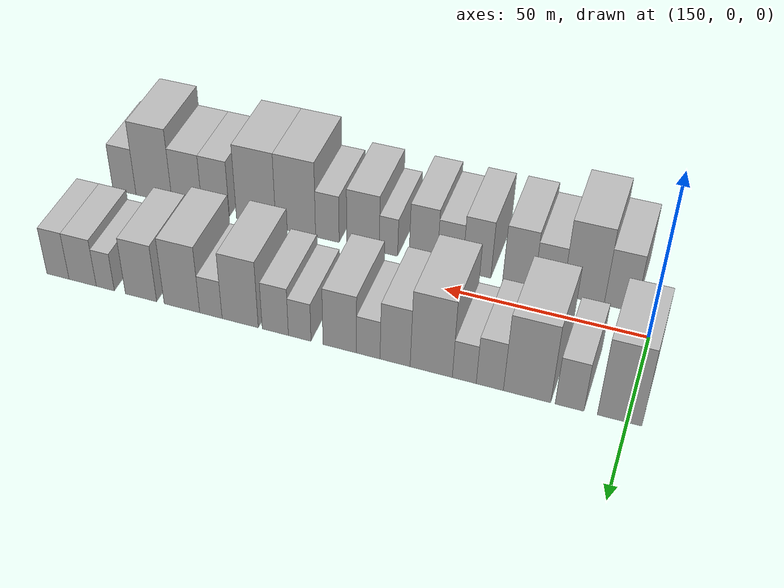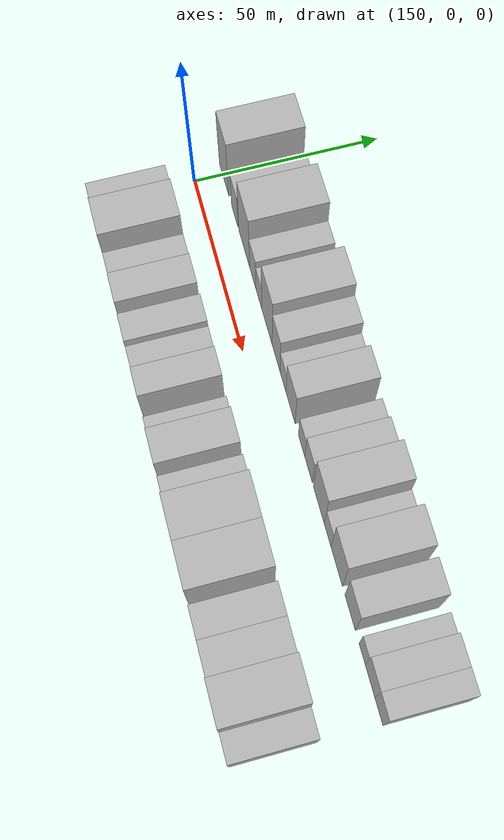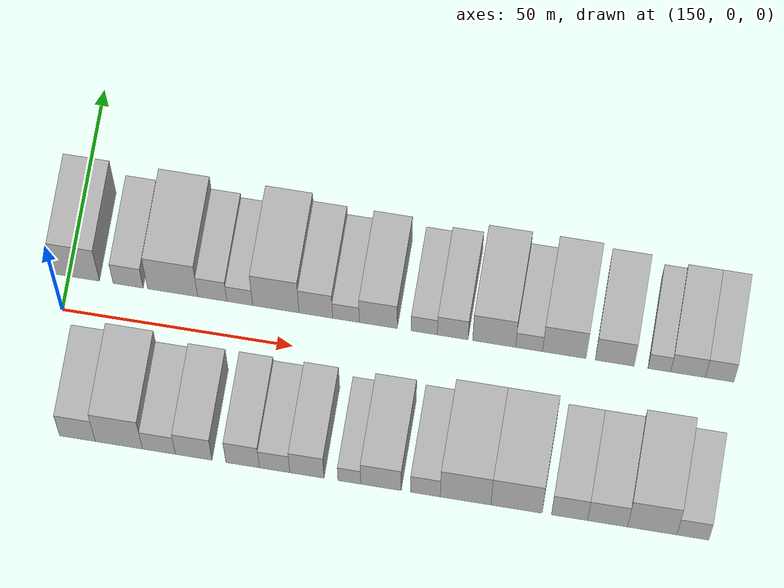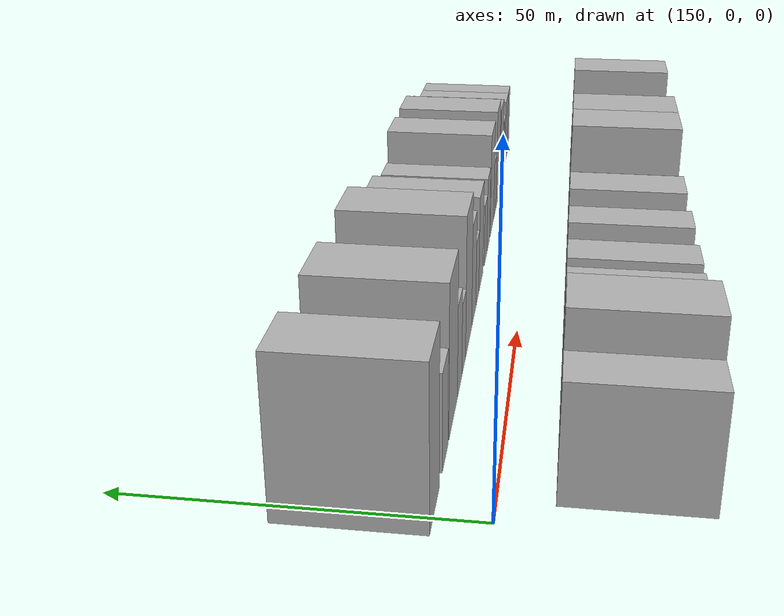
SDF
<sdf version="1.6">
 <world name="default">
  <model name="building_16">
   <static>1</static>
   <pose>151.6716 17.5000 0 0.000000 0.000000 1.570796</pose>
   <link name="link">
    <pose>0 0 12.00 0 0 0</pose>
    <collision name="collision"><geometry><box><size>20.0000 9.9136 24.0000</size></box></geometry></collision>
    <visual name="visual">
     <cast_shadows>0</cast_shadows>
     <geometry><box><size>20.0000 9.9136 24.0000</size></box></geometry>
     <material>
      <script>
       <uri>model://HANNAS_wall/materials/scripts</uri>
       <uri>model://HANNAS_wall/materials/textures</uri>
       <name>vrc/HANNAS_wall</name>
      </script>
     </material>
    </visual>
   </link>
  </model>
  <model name="building_17">
   <static>1</static>
   <pose>162.9030 17.5000 0 0.000000 0.000000 1.570796</pose>
   <link name="link">
    <pose>0 0 7.50 0 0 0</pose>
    <collision name="collision"><geometry><box><size>20.0000 6.5493 15.0000</size></box></geometry></collision>
    <visual name="visual">
     <cast_shadows>0</cast_shadows>
     <geometry><box><size>20.0000 6.5493 15.0000</size></box></geometry>
     <material>
      <script>
       <uri>model://HANNAS_wall/materials/scripts</uri>
       <uri>model://HANNAS_wall/materials/textures</uri>
       <name>vrc/HANNAS_wall</name>
      </script>
     </material>
    </visual>
   </link>
  </model>
  <model name="building_18">
   <static>1</static>
   <pose>172.6414 17.5000 0 0.000000 0.000000 1.570796</pose>
   <link name="link">
    <pose>0 0 12.00 0 0 0</pose>
    <collision name="collision"><geometry><box><size>20.0000 10.9275 24.0000</size></box></geometry></collision>
    <visual name="visual">
     <cast_shadows>0</cast_shadows>
     <geometry><box><size>20.0000 10.9275 24.0000</size></box></geometry>
     <material>
      <script>
       <uri>model://HANNAS_wall/materials/scripts</uri>
       <uri>model://HANNAS_wall/materials/textures</uri>
       <name>vrc/HANNAS_wall</name>
      </script>
     </material>
    </visual>
   </link>
  </model>
  <model name="building_19">
   <static>1</static>
   <pose>181.2787 17.5000 0 0.000000 0.000000 1.570796</pose>
   <link name="link">
    <pose>0 0 7.50 0 0 0</pose>
    <collision name="collision"><geometry><box><size>20.0000 6.3471 15.0000</size></box></geometry></collision>
    <visual name="visual">
     <cast_shadows>0</cast_shadows>
     <geometry><box><size>20.0000 6.3471 15.0000</size></box></geometry>
     <material>
      <script>
       <uri>model://HANNAS_wall/materials/scripts</uri>
       <uri>model://HANNAS_wall/materials/textures</uri>
       <name>vrc/HANNAS_wall</name>
      </script>
     </material>
    </visual>
   </link>
  </model>
  <model name="building_20">
   <static>1</static>
   <pose>187.2736 17.5000 0 0.000000 0.000000 1.570796</pose>
   <link name="link">
    <pose>0 0 6.00 0 0 0</pose>
    <collision name="collision"><geometry><box><size>20.0000 5.6426 12.0000</size></box></geometry></collision>
    <visual name="visual">
     <cast_shadows>0</cast_shadows>
     <geometry><box><size>20.0000 5.6426 12.0000</size></box></geometry>
     <material>
      <script>
       <uri>model://HANNAS_wall/materials/scripts</uri>
       <uri>model://HANNAS_wall/materials/textures</uri>
       <name>vrc/HANNAS_wall</name>
      </script>
     </material>
    </visual>
   </link>
  </model>
  <model name="building_21">
   <static>1</static>
   <pose>195.1427 17.5000 0 0.000000 0.000000 1.570796</pose>
   <link name="link">
    <pose>0 0 12.00 0 0 0</pose>
    <collision name="collision"><geometry><box><size>20.0000 10.0957 24.0000</size></box></geometry></collision>
    <visual name="visual">
     <cast_shadows>0</cast_shadows>
     <geometry><box><size>20.0000 10.0957 24.0000</size></box></geometry>
     <material>
      <script>
       <uri>model://HANNAS_wall/materials/scripts</uri>
       <uri>model://HANNAS_wall/materials/textures</uri>
       <name>vrc/HANNAS_wall</name>
      </script>
     </material>
    </visual>
   </link>
  </model>
  <model name="building_22">
   <static>1</static>
   <pose>203.8434 17.5000 0 0.000000 0.000000 1.570796</pose>
   <link name="link">
    <pose>0 0 9.00 0 0 0</pose>
    <collision name="collision"><geometry><box><size>20.0000 7.3057 18.0000</size></box></geometry></collision>
    <visual name="visual">
     <cast_shadows>0</cast_shadows>
     <geometry><box><size>20.0000 7.3057 18.0000</size></box></geometry>
     <material>
      <script>
       <uri>model://HANNAS_wall/materials/scripts</uri>
       <uri>model://HANNAS_wall/materials/textures</uri>
       <name>vrc/HANNAS_wall</name>
      </script>
     </material>
    </visual>
   </link>
  </model>
  <model name="building_23">
   <static>1</static>
   <pose>210.3932 17.5000 0 0.000000 0.000000 1.570796</pose>
   <link name="link">
    <pose>0 0 6.00 0 0 0</pose>
    <collision name="collision"><geometry><box><size>20.0000 5.7938 12.0000</size></box></geometry></collision>
    <visual name="visual">
     <cast_shadows>0</cast_shadows>
     <geometry><box><size>20.0000 5.7938 12.0000</size></box></geometry>
     <material>
      <script>
       <uri>model://HANNAS_wall/materials/scripts</uri>
       <uri>model://HANNAS_wall/materials/textures</uri>
       <name>vrc/HANNAS_wall</name>
      </script>
     </material>
    </visual>
   </link>
  </model>
  <model name="building_24">
   <static>1</static>
   <pose>217.4280 17.5000 0 0.000000 0.000000 1.570796</pose>
   <link name="link">
    <pose>0 0 9.00 0 0 0</pose>
    <collision name="collision"><geometry><box><size>20.0000 8.2758 18.0000</size></box></geometry></collision>
    <visual name="visual">
     <cast_shadows>0</cast_shadows>
     <geometry><box><size>20.0000 8.2758 18.0000</size></box></geometry>
     <material>
      <script>
       <uri>model://HANNAS_wall/materials/scripts</uri>
       <uri>model://HANNAS_wall/materials/textures</uri>
       <name>vrc/HANNAS_wall</name>
      </script>
     </material>
    </visual>
   </link>
  </model>
  <model name="building_25">
   <static>1</static>
   <pose>227.4150 17.5000 0 0.000000 0.000000 1.570796</pose>
   <link name="link">
    <pose>0 0 6.00 0 0 0</pose>
    <collision name="collision"><geometry><box><size>20.0000 5.6981 12.0000</size></box></geometry></collision>
    <visual name="visual">
     <cast_shadows>0</cast_shadows>
     <geometry><box><size>20.0000 5.6981 12.0000</size></box></geometry>
     <material>
      <script>
       <uri>model://HANNAS_wall/materials/scripts</uri>
       <uri>model://HANNAS_wall/materials/textures</uri>
       <name>vrc/HANNAS_wall</name>
      </script>
     </material>
    </visual>
   </link>
  </model>
  <model name="building_26">
   <static>1</static>
   <pose>233.5926 17.5000 0 0.000000 0.000000 1.570796</pose>
   <link name="link">
    <pose>0 0 7.50 0 0 0</pose>
    <collision name="collision"><geometry><box><size>20.0000 6.6571 15.0000</size></box></geometry></collision>
    <visual name="visual">
     <cast_shadows>0</cast_shadows>
     <geometry><box><size>20.0000 6.6571 15.0000</size></box></geometry>
     <material>
      <script>
       <uri>model://HANNAS_wall/materials/scripts</uri>
       <uri>model://HANNAS_wall/materials/textures</uri>
       <name>vrc/HANNAS_wall</name>
      </script>
     </material>
    </visual>
   </link>
  </model>
  <model name="building_27">
   <static>1</static>
   <pose>242.5889 17.5000 0 0.000000 0.000000 1.570796</pose>
   <link name="link">
    <pose>0 0 10.50 0 0 0</pose>
    <collision name="collision"><geometry><box><size>20.0000 9.3354 21.0000</size></box></geometry></collision>
    <visual name="visual">
     <cast_shadows>0</cast_shadows>
     <geometry><box><size>20.0000 9.3354 21.0000</size></box></geometry>
     <material>
      <script>
       <uri>model://HANNAS_wall/materials/scripts</uri>
       <uri>model://HANNAS_wall/materials/textures</uri>
       <name>vrc/HANNAS_wall</name>
      </script>
     </material>
    </visual>
   </link>
  </model>
  <model name="building_28">
   <static>1</static>
   <pose>250.1770 17.5000 0 0.000000 0.000000 1.570796</pose>
   <link name="link">
    <pose>0 0 6.00 0 0 0</pose>
    <collision name="collision"><geometry><box><size>20.0000 5.8409 12.0000</size></box></geometry></collision>
    <visual name="visual">
     <cast_shadows>0</cast_shadows>
     <geometry><box><size>20.0000 5.8409 12.0000</size></box></geometry>
     <material>
      <script>
       <uri>model://HANNAS_wall/materials/scripts</uri>
       <uri>model://HANNAS_wall/materials/textures</uri>
       <name>vrc/HANNAS_wall</name>
      </script>
     </material>
    </visual>
   </link>
  </model>
  <model name="building_29">
   <static>1</static>
   <pose>257.8004 17.5000 0 0.000000 0.000000 1.570796</pose>
   <link name="link">
    <pose>0 0 10.50 0 0 0</pose>
    <collision name="collision"><geometry><box><size>20.0000 9.4058 21.0000</size></box></geometry></collision>
    <visual name="visual">
     <cast_shadows>0</cast_shadows>
     <geometry><box><size>20.0000 9.4058 21.0000</size></box></geometry>
     <material>
      <script>
       <uri>model://HANNAS_wall/materials/scripts</uri>
       <uri>model://HANNAS_wall/materials/textures</uri>
       <name>vrc/HANNAS_wall</name>
      </script>
     </material>
    </visual>
   </link>
  </model>
  <model name="building_30">
   <static>1</static>
   <pose>268.7060 17.5000 0 0.000000 0.000000 1.570796</pose>
   <link name="link">
    <pose>0 0 9.00 0 0 0</pose>
    <collision name="collision"><geometry><box><size>20.0000 8.4054 18.0000</size></box></geometry></collision>
    <visual name="visual">
     <cast_shadows>0</cast_shadows>
     <geometry><box><size>20.0000 8.4054 18.0000</size></box></geometry>
     <material>
      <script>
       <uri>model://HANNAS_wall/materials/scripts</uri>
       <uri>model://HANNAS_wall/materials/textures</uri>
       <name>vrc/HANNAS_wall</name>
      </script>
     </material>
    </visual>
   </link>
  </model>
  <model name="building_31">
   <static>1</static>
   <pose>278.3729 17.5000 0 0.000000 0.000000 1.570796</pose>
   <link name="link">
    <pose>0 0 6.00 0 0 0</pose>
    <collision name="collision"><geometry><box><size>20.0000 4.9284 12.0000</size></box></geometry></collision>
    <visual name="visual">
     <cast_shadows>0</cast_shadows>
     <geometry><box><size>20.0000 4.9284 12.0000</size></box></geometry>
     <material>
      <script>
       <uri>model://HANNAS_wall/materials/scripts</uri>
       <uri>model://HANNAS_wall/materials/textures</uri>
       <name>vrc/HANNAS_wall</name>
      </script>
     </material>
    </visual>
   </link>
  </model>
  <model name="building_32">
   <static>1</static>
   <pose>284.5853 17.5000 0 0.000000 0.000000 1.570796</pose>
   <link name="link">
    <pose>0 0 7.50 0 0 0</pose>
    <collision name="collision"><geometry><box><size>20.0000 7.4963 15.0000</size></box></geometry></collision>
    <visual name="visual">
     <cast_shadows>0</cast_shadows>
     <geometry><box><size>20.0000 7.4963 15.0000</size></box></geometry>
     <material>
      <script>
       <uri>model://HANNAS_wall/materials/scripts</uri>
       <uri>model://HANNAS_wall/materials/textures</uri>
       <name>vrc/HANNAS_wall</name>
      </script>
     </material>
    </visual>
   </link>
  </model>
  <model name="building_33">
   <static>1</static>
   <pose>291.4075 17.5000 0 0.000000 0.000000 1.570796</pose>
   <link name="link">
    <pose>0 0 7.50 0 0 0</pose>
    <collision name="collision"><geometry><box><size>20.0000 6.1482 15.0000</size></box></geometry></collision>
    <visual name="visual">
     <cast_shadows>0</cast_shadows>
     <geometry><box><size>20.0000 6.1482 15.0000</size></box></geometry>
     <material>
      <script>
       <uri>model://HANNAS_wall/materials/scripts</uri>
       <uri>model://HANNAS_wall/materials/textures</uri>
       <name>vrc/HANNAS_wall</name>
      </script>
     </material>
    </visual>
   </link>
  </model>
  <model name="building_50">
   <static>1</static>
   <pose>158.2907 -17.5000 0 0.000000 0.000000 1.570796</pose>
   <link name="link">
    <pose>0 0 9.00 0 0 0</pose>
    <collision name="collision"><geometry><box><size>20.0000 7.7266 18.0000</size></box></geometry></collision>
    <visual name="visual">
     <cast_shadows>0</cast_shadows>
     <geometry><box><size>20.0000 7.7266 18.0000</size></box></geometry>
     <material>
      <script>
       <uri>model://HANNAS_wall/materials/scripts</uri>
       <uri>model://HANNAS_wall/materials/textures</uri>
       <name>vrc/HANNAS_wall</name>
      </script>
     </material>
    </visual>
   </link>
  </model>
  <model name="building_51">
   <static>1</static>
   <pose>167.2499 -17.5000 0 0.000000 0.000000 1.570796</pose>
   <link name="link">
    <pose>0 0 12.00 0 0 0</pose>
    <collision name="collision"><geometry><box><size>20.0000 10.1919 24.0000</size></box></geometry></collision>
    <visual name="visual">
     <cast_shadows>0</cast_shadows>
     <geometry><box><size>20.0000 10.1919 24.0000</size></box></geometry>
     <material>
      <script>
       <uri>model://HANNAS_wall/materials/scripts</uri>
       <uri>model://HANNAS_wall/materials/textures</uri>
       <name>vrc/HANNAS_wall</name>
      </script>
     </material>
    </visual>
   </link>
  </model>
  <model name="building_52">
   <static>1</static>
   <pose>175.9003 -17.5000 0 0.000000 0.000000 1.570796</pose>
   <link name="link">
    <pose>0 0 7.50 0 0 0</pose>
    <collision name="collision"><geometry><box><size>20.0000 7.1090 15.0000</size></box></geometry></collision>
    <visual name="visual">
     <cast_shadows>0</cast_shadows>
     <geometry><box><size>20.0000 7.1090 15.0000</size></box></geometry>
     <material>
      <script>
       <uri>model://HANNAS_wall/materials/scripts</uri>
       <uri>model://HANNAS_wall/materials/textures</uri>
       <name>vrc/HANNAS_wall</name>
      </script>
     </material>
    </visual>
   </link>
  </model>
  <model name="building_53">
   <static>1</static>
   <pose>183.4183 -17.5000 0 0.000000 0.000000 1.570796</pose>
   <link name="link">
    <pose>0 0 9.00 0 0 0</pose>
    <collision name="collision"><geometry><box><size>20.0000 7.9270 18.0000</size></box></geometry></collision>
    <visual name="visual">
     <cast_shadows>0</cast_shadows>
     <geometry><box><size>20.0000 7.9270 18.0000</size></box></geometry>
     <material>
      <script>
       <uri>model://HANNAS_wall/materials/scripts</uri>
       <uri>model://HANNAS_wall/materials/textures</uri>
       <name>vrc/HANNAS_wall</name>
      </script>
     </material>
    </visual>
   </link>
  </model>
  <model name="building_54">
   <static>1</static>
   <pose>193.9921 -17.5000 0 0.000000 0.000000 1.570796</pose>
   <link name="link">
    <pose>0 0 9.00 0 0 0</pose>
    <collision name="collision"><geometry><box><size>20.0000 7.2206 18.0000</size></box></geometry></collision>
    <visual name="visual">
     <cast_shadows>0</cast_shadows>
     <geometry><box><size>20.0000 7.2206 18.0000</size></box></geometry>
     <material>
      <script>
       <uri>model://HANNAS_wall/materials/scripts</uri>
       <uri>model://HANNAS_wall/materials/textures</uri>
       <name>vrc/HANNAS_wall</name>
      </script>
     </material>
    </visual>
   </link>
  </model>
  <model name="building_55">
   <static>1</static>
   <pose>200.8921 -17.5000 0 0.000000 0.000000 1.570796</pose>
   <link name="link">
    <pose>0 0 7.50 0 0 0</pose>
    <collision name="collision"><geometry><box><size>20.0000 6.5794 15.0000</size></box></geometry></collision>
    <visual name="visual">
     <cast_shadows>0</cast_shadows>
     <geometry><box><size>20.0000 6.5794 15.0000</size></box></geometry>
     <material>
      <script>
       <uri>model://HANNAS_wall/materials/scripts</uri>
       <uri>model://HANNAS_wall/materials/textures</uri>
       <name>vrc/HANNAS_wall</name>
      </script>
     </material>
    </visual>
   </link>
  </model>
  <model name="building_56">
   <static>1</static>
   <pose>207.8670 -17.5000 0 0.000000 0.000000 1.570796</pose>
   <link name="link">
    <pose>0 0 9.00 0 0 0</pose>
    <collision name="collision"><geometry><box><size>20.0000 7.3704 18.0000</size></box></geometry></collision>
    <visual name="visual">
     <cast_shadows>0</cast_shadows>
     <geometry><box><size>20.0000 7.3704 18.0000</size></box></geometry>
     <material>
      <script>
       <uri>model://HANNAS_wall/materials/scripts</uri>
       <uri>model://HANNAS_wall/materials/textures</uri>
       <name>vrc/HANNAS_wall</name>
      </script>
     </material>
    </visual>
   </link>
  </model>
  <model name="building_57">
   <static>1</static>
   <pose>217.0027 -17.5000 0 0.000000 0.000000 1.570796</pose>
   <link name="link">
    <pose>0 0 6.00 0 0 0</pose>
    <collision name="collision"><geometry><box><size>20.0000 4.9009 12.0000</size></box></geometry></collision>
    <visual name="visual">
     <cast_shadows>0</cast_shadows>
     <geometry><box><size>20.0000 4.9009 12.0000</size></box></geometry>
     <material>
      <script>
       <uri>model://HANNAS_wall/materials/scripts</uri>
       <uri>model://HANNAS_wall/materials/textures</uri>
       <name>vrc/HANNAS_wall</name>
      </script>
     </material>
    </visual>
   </link>
  </model>
  <model name="building_58">
   <static>1</static>
   <pose>223.8086 -17.5000 0 0.000000 0.000000 1.570796</pose>
   <link name="link">
    <pose>0 0 9.00 0 0 0</pose>
    <collision name="collision"><geometry><box><size>20.0000 8.7110 18.0000</size></box></geometry></collision>
    <visual name="visual">
     <cast_shadows>0</cast_shadows>
     <geometry><box><size>20.0000 8.7110 18.0000</size></box></geometry>
     <material>
      <script>
       <uri>model://HANNAS_wall/materials/scripts</uri>
       <uri>model://HANNAS_wall/materials/textures</uri>
       <name>vrc/HANNAS_wall</name>
      </script>
     </material>
    </visual>
   </link>
  </model>
  <model name="building_59">
   <static>1</static>
   <pose>233.3595 -17.5000 0 0.000000 0.000000 1.570796</pose>
   <link name="link">
    <pose>0 0 7.50 0 0 0</pose>
    <collision name="collision"><geometry><box><size>20.0000 6.3907 15.0000</size></box></geometry></collision>
    <visual name="visual">
     <cast_shadows>0</cast_shadows>
     <geometry><box><size>20.0000 6.3907 15.0000</size></box></geometry>
     <material>
      <script>
       <uri>model://HANNAS_wall/materials/scripts</uri>
       <uri>model://HANNAS_wall/materials/textures</uri>
       <name>vrc/HANNAS_wall</name>
      </script>
     </material>
    </visual>
   </link>
  </model>
  <model name="building_60">
   <static>1</static>
   <pose>242.0150 -17.5000 0 0.000000 0.000000 1.570796</pose>
   <link name="link">
    <pose>0 0 12.00 0 0 0</pose>
    <collision name="collision"><geometry><box><size>20.0000 10.9201 24.0000</size></box></geometry></collision>
    <visual name="visual">
     <cast_shadows>0</cast_shadows>
     <geometry><box><size>20.0000 10.9201 24.0000</size></box></geometry>
     <material>
      <script>
       <uri>model://HANNAS_wall/materials/scripts</uri>
       <uri>model://HANNAS_wall/materials/textures</uri>
       <name>vrc/HANNAS_wall</name>
      </script>
     </material>
    </visual>
   </link>
  </model>
  <model name="building_61">
   <static>1</static>
   <pose>252.9673 -17.5000 0 0.000000 0.000000 1.570796</pose>
   <link name="link">
    <pose>0 0 12.00 0 0 0</pose>
    <collision name="collision"><geometry><box><size>20.0000 10.9845 24.0000</size></box></geometry></collision>
    <visual name="visual">
     <cast_shadows>0</cast_shadows>
     <geometry><box><size>20.0000 10.9845 24.0000</size></box></geometry>
     <material>
      <script>
       <uri>model://HANNAS_wall/materials/scripts</uri>
       <uri>model://HANNAS_wall/materials/textures</uri>
       <name>vrc/HANNAS_wall</name>
      </script>
     </material>
    </visual>
   </link>
  </model>
  <model name="building_62">
   <static>1</static>
   <pose>264.3280 -17.5000 0 0.000000 0.000000 1.570796</pose>
   <link name="link">
    <pose>0 0 9.00 0 0 0</pose>
    <collision name="collision"><geometry><box><size>20.0000 7.7370 18.0000</size></box></geometry></collision>
    <visual name="visual">
     <cast_shadows>0</cast_shadows>
     <geometry><box><size>20.0000 7.7370 18.0000</size></box></geometry>
     <material>
      <script>
       <uri>model://HANNAS_wall/materials/scripts</uri>
       <uri>model://HANNAS_wall/materials/textures</uri>
       <name>vrc/HANNAS_wall</name>
      </script>
     </material>
    </visual>
   </link>
  </model>
  <model name="building_63">
   <static>1</static>
   <pose>272.4907 -17.5000 0 0.000000 0.000000 1.570796</pose>
   <link name="link">
    <pose>0 0 9.00 0 0 0</pose>
    <collision name="collision"><geometry><box><size>20.0000 8.5885 18.0000</size></box></geometry></collision>
    <visual name="visual">
     <cast_shadows>0</cast_shadows>
     <geometry><box><size>20.0000 8.5885 18.0000</size></box></geometry>
     <material>
      <script>
       <uri>model://HANNAS_wall/materials/scripts</uri>
       <uri>model://HANNAS_wall/materials/textures</uri>
       <name>vrc/HANNAS_wall</name>
      </script>
     </material>
    </visual>
   </link>
  </model>
  <model name="building_64">
   <static>1</static>
   <pose>282.0670 -17.5000 0 0.000000 0.000000 1.570796</pose>
   <link name="link">
    <pose>0 0 12.00 0 0 0</pose>
    <collision name="collision"><geometry><box><size>20.0000 10.5641 24.0000</size></box></geometry></collision>
    <visual name="visual">
     <cast_shadows>0</cast_shadows>
     <geometry><box><size>20.0000 10.5641 24.0000</size></box></geometry>
     <material>
      <script>
       <uri>model://HANNAS_wall/materials/scripts</uri>
       <uri>model://HANNAS_wall/materials/textures</uri>
       <name>vrc/HANNAS_wall</name>
      </script>
     </material>
    </visual>
   </link>
  </model>
  <model name="building_65">
   <static>1</static>
   <pose>290.7537 -17.5000 0 0.000000 0.000000 1.570796</pose>
   <link name="link">
    <pose>0 0 7.50 0 0 0</pose>
    <collision name="collision"><geometry><box><size>20.0000 6.8092 15.0000</size></box></geometry></collision>
    <visual name="visual">
     <cast_shadows>0</cast_shadows>
     <geometry><box><size>20.0000 6.8092 15.0000</size></box></geometry>
     <material>
      <script>
       <uri>model://HANNAS_wall/materials/scripts</uri>
       <uri>model://HANNAS_wall/materials/textures</uri>
       <name>vrc/HANNAS_wall</name>
      </script>
     </material>
    </visual>
   </link>
  </model>
 </world>
</sdf>
